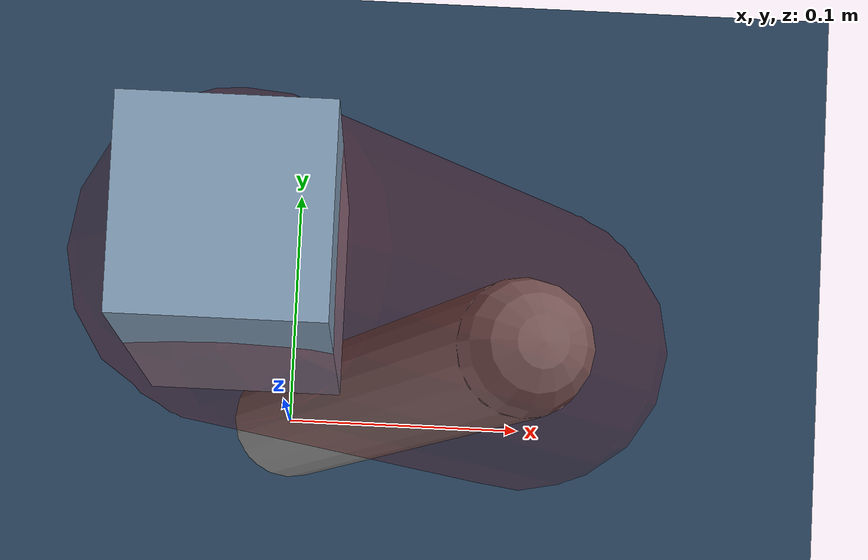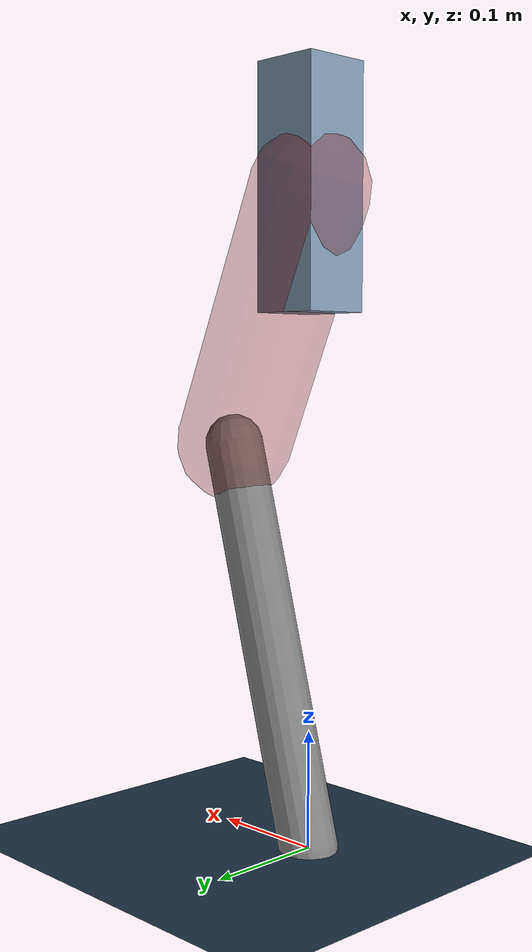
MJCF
<mujoco model="Hopper2D">
	<compiler inertiafromgeom="true" angle="radian" />
	<option timestep="0.001" integrator="implicit" cone="elliptic" solver="Newton" tolerance="1e-10" />

	<default>
		<geom contype="1" conaffinity="1" condim="3" friction="2 0.005 0.0001" solref="0.005 1" />
		<joint limited="true" damping="0.1" />
	</default>

	<asset>
		<texture name="skybox" type="skybox" builtin="gradient" rgb1=".4 .6 .8" rgb2="0 0 0" width="800" height="800" />
		<texture name="grid" type="2d" builtin="checker" rgb1=".1 .2 .3" rgb2=".2 .3 .4" width="300" height="300" mark="edge" markrgb=".2 .3 .4" />
		<material name="ground" texture="grid" texrepeat="1 1" texuniform="true" reflectance="0.1" />
		<material name="leg" rgba="0.5 0.6 0.7 1" />
	</asset>

	<worldbody>

		<geom name="floor" type="plane" size="5 5 0.25" material="ground" />

		<light directional="false" diffuse="0.8 0.8 0.8" specular="0.3 0.3 0.3" pos="0 0 2" dir="0 0 -1" />
		<light mode="targetbodycom" target="base" directional="false" diffuse="0.8 0.8 0.8" specular="0.3 0.3 0.3" pos="0 0 2" dir="0 0 -1" />

		<camera name="fixed" pos="0 -2 1" xyaxes="1 0 0 0 0 1" />
		<camera name="tracking" mode="trackcom" pos="0 -3 1" />

		<body name="root" pos="0 0 0.547268296585775">
			<joint name="slide_x" type="slide" axis="1 0 0" range="-100 100" />
			<joint name="slide_z" type="slide" axis="0 0 1" range="0 10" />

			<body name="base" pos="0 0 0">
				<geom name="torso" type="box" size="0.03 0.03 0.1" mass="2.7350000000000003" material="leg" />

				<body name="link1" pos="0 0 0" euler="0 1.1587917481660108 0">
					<joint type="hinge" axis="0 -1 0" pos="0 0 0" name="hinge1" limited="true" range="-3.14 3.14" stiffness="0" damping="0.1" />
					<geom name="thigh" type="capsule" fromto="0 0 0 0.22872721828089634 0 0" size="0.05" rgba="0.5 0 0 0.3" mass="0.8017907675303305" />

					<body name="link2" pos="0.22872721828089634 0 0" euler="0 0.6768732601729317 0">
						<joint type="hinge" axis="0 -1 0" pos="0 0 0" name="hinge2" limited="true" range="-3.14 3.14" stiffness="0" damping="0.1" />
						<geom name="shank" type="capsule" fromto="0 0 0 0.3498824778577051 0 0" size="0.025" mass="0.5238059822861642" />

					</body>
				</body>
			</body>
		</body>
	</worldbody>

	<actuator>
		<motor name="torque1" joint="hinge1" ctrlrange="-49.52608488425514 49.52608488425514" ctrllimited="true" gear="1" />
		<motor name="torque2" joint="hinge2" ctrlrange="-134.4262194990287 134.4262194990287" ctrllimited="true" gear="1" />
	</actuator>
</mujoco>
